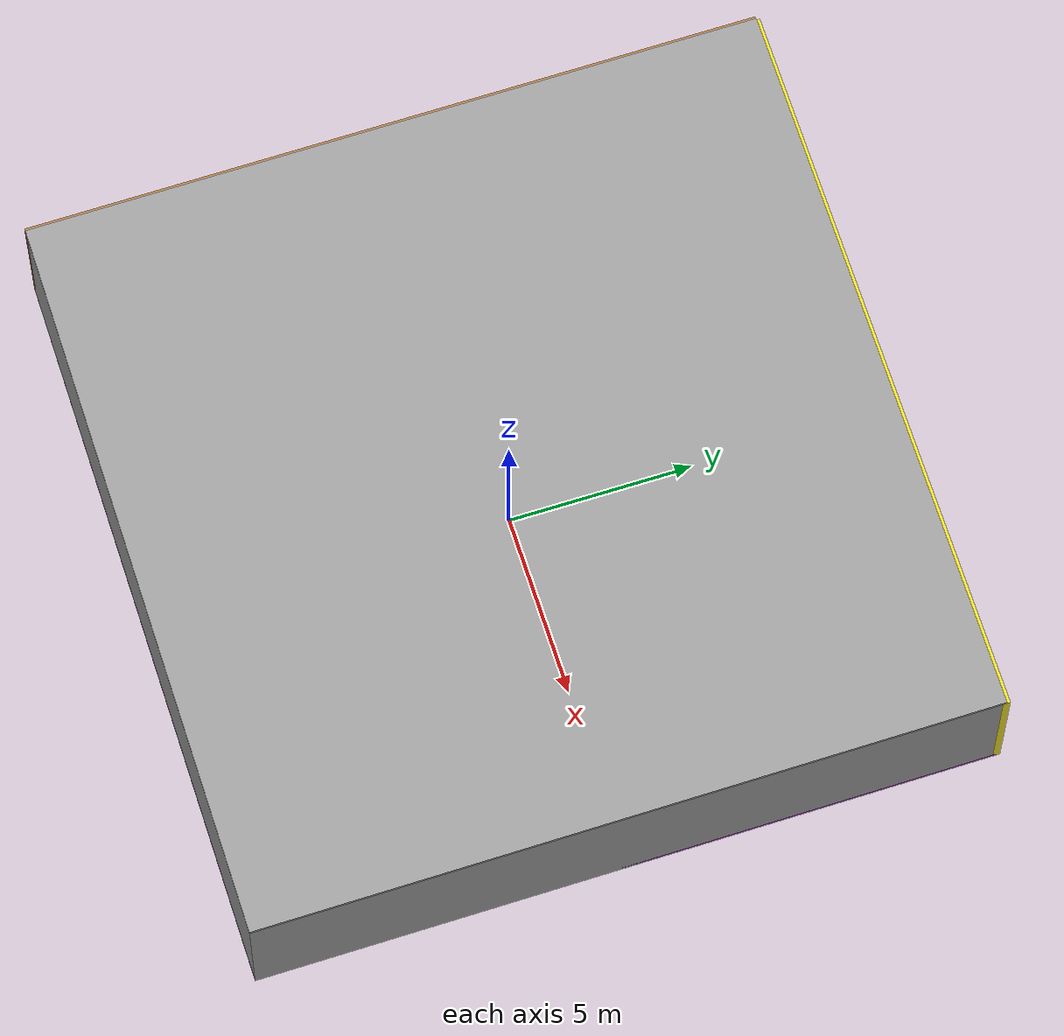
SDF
<sdf version="1.4">
 <world name="default">
  <physics type="ode">
   <max_step_size>0.001</max_step_size>
   <real_time_factor>1</real_time_factor>
   <real_time_update_rate>1000</real_time_update_rate>
   <gravity>0 0 -9.8</gravity>
  </physics>
  <scene><ambient>0.4 0.4 0.4 1</ambient><background>0.7 0.7 0.7 1</background><shadows>1</shadows></scene>
  <model name="Surrounding">
   <static>1</static>
   <link name="Ceiling">
    <collision name="Ceiling_Collision"><geometry><box><size>20 20 0.1</size></box></geometry></collision>
    <visual name="Ceiling_Visual">
     <geometry><box><size>20 20 0.1</size></box></geometry>
     <material>
      <script><uri>file://media/materials/scripts/gazebo.material</uri><name>Gazebo/Grey</name></script>
     </material>
    </visual>
    <pose>0 0 4.05 0 0 0</pose>
   </link>
   <link name="Wall_South">
    <collision name="Wall_South_Collision">
     <geometry><box><size>20 0 4</size></box></geometry>
     <pose>0 0 2 0 -0 0</pose>
    </collision>
    <visual name="Wall_South_Visual">
     <pose>0 0 2 0 -0 0</pose>
     <geometry><box><size>20 0 4</size></box></geometry>
     <material>
      <script><uri>file://media/materials/scripts/gazebo.material</uri><name>Gazebo/Pioneer2Body</name></script>
     </material>
    </visual>
    <velocity_decay><linear>0</linear><angular>0</angular></velocity_decay>
    <pose>0 -10 0 0 -0 0</pose>
   </link>
   <link name="Wall_East">
    <collision name="Wall_21_Collision">
     <geometry><box><size>20 0 4</size></box></geometry>
     <pose>0 0 2 0 -0 0</pose>
    </collision>
    <visual name="Wall_21_Visual">
     <pose>0 0 2 0 -0 0</pose>
     <geometry><box><size>20 0 4</size></box></geometry>
     <material>
      <script><uri>file://media/materials/scripts/gazebo.material</uri><name>Gazebo/Grey</name></script>
     </material>
    </visual>
    <velocity_decay><linear>0</linear><angular>0</angular></velocity_decay>
    <pose>10 0 0 0 -0 1.5708</pose>
   </link>
   <link name="Wall_North">
    <collision name="Wall_22_Collision">
     <geometry><box><size>20 0.2 4</size></box></geometry>
     <pose>0 0 2 0 -0 0</pose>
    </collision>
    <visual name="Wall_22_Visual">
     <pose>0 0 2 0 -0 0</pose>
     <geometry><box><size>20 0.2 4</size></box></geometry>
     <material>
      <script><uri>file://media/materials/scripts/gazebo.material</uri><name>Gazebo/YellowGlow</name></script>
     </material>
    </visual>
    <velocity_decay><linear>0</linear><angular>0</angular></velocity_decay>
    <pose>0 10 0 0 -0 0</pose>
   </link>
   <link name="Wall_West">
    <collision name="Wall_23_Collision">
     <geometry><box><size>20 0.2 4</size></box></geometry>
     <pose>0 0 2 0 -0 0</pose>
    </collision>
    <visual name="Wall_23_Visual">
     <pose>0 0 2 0 -0 0</pose>
     <geometry><box><size>20 0.2 4</size></box></geometry>
     <material>
      <script><uri>file://media/materials/scripts/gazebo.material</uri><name>Gazebo/WoodFloor</name></script>
     </material>
    </visual>
    <velocity_decay><linear>0</linear><angular>0</angular></velocity_decay>
    <pose>-10 0 0 0 0 -1.5708</pose>
   </link>
   <link name="Ground_link">
    <collision name="collision">
     <pose>0 0 .05 0 -0 0</pose>
     <geometry><box><size>20 20 0.1</size></box></geometry>
    </collision>
    <visual name="visual">
     <pose>0 0 .05 0 -0 0</pose>
     <geometry><box><size>20 20 0.1</size></box></geometry>
     <material>
      <script><uri>file://media/materials/scripts/gazebo.material</uri><name>Gazebo/PurpleGlow</name></script>
     </material>
    </visual>
   </link>
   <static>1</static>
  </model>
  <spherical_coordinates>
   <surface_model>EARTH_WGS84</surface_model>
   <latitude_deg>0</latitude_deg>
   <longitude_deg>0</longitude_deg>
   <elevation>0</elevation>
   <heading_deg>0</heading_deg>
  </spherical_coordinates>
  <light name="lightball_0" type="diffuse">
   <diffuse>0.8 0.8 0.8 1</diffuse>
   <specular>0.2 0.2 0.2 1</specular>
   <attenuation>
    <range>100</range>
    <constant>0.7</constant>
    <linear>0.01</linear>
    <quadratic>0.001</quadratic>
   </attenuation>
   <direction>-0.5 0.1 -0.9</direction>
   <pose>-1.33870951192 0.646965446696 1.36998345384 0 0 0</pose>
  </light>
  <light name="lightball_1" type="diffuse">
   <diffuse>0.8 0.8 0.8 1</diffuse>
   <specular>0.2 0.2 0.2 1</specular>
   <attenuation>
    <range>100</range>
    <constant>0.7</constant>
    <linear>0.01</linear>
    <quadratic>0.001</quadratic>
   </attenuation>
   <direction>-0.5 0.1 -0.9</direction>
   <pose>1.32032700601 2.79493806187 1.98210313009 0 0 0</pose>
  </light>
  <light name="lightball_2" type="diffuse">
   <diffuse>0.8 0.8 0.8 1</diffuse>
   <specular>0.2 0.2 0.2 1</specular>
   <attenuation>
    <range>100</range>
    <constant>0.7</constant>
    <linear>0.01</linear>
    <quadratic>0.001</quadratic>
   </attenuation>
   <direction>-0.5 0.1 -0.9</direction>
   <pose>3.49313474168 -8.62852631817 2.39666610121 0 0 0</pose>
  </light>
  <light name="lightball_3" type="diffuse">
   <diffuse>0.8 0.8 0.8 1</diffuse>
   <specular>0.2 0.2 0.2 1</specular>
   <attenuation>
    <range>100</range>
    <constant>0.7</constant>
    <linear>0.01</linear>
    <quadratic>0.001</quadratic>
   </attenuation>
   <direction>-0.5 0.1 -0.9</direction>
   <pose>-0.655973759187 -1.51014244843 1.63349213194 0 0 0</pose>
  </light>
  <light name="lightball_4" type="diffuse">
   <diffuse>0.8 0.8 0.8 1</diffuse>
   <specular>0.2 0.2 0.2 1</specular>
   <attenuation>
    <range>100</range>
    <constant>0.7</constant>
    <linear>0.01</linear>
    <quadratic>0.001</quadratic>
   </attenuation>
   <direction>-0.5 0.1 -0.9</direction>
   <pose>-8.36697190031 9.00648476253 1.07501876277 0 0 0</pose>
  </light>
  <light name="lightball_5" type="diffuse">
   <diffuse>0.8 0.8 0.8 1</diffuse>
   <specular>0.2 0.2 0.2 1</specular>
   <attenuation>
    <range>100</range>
    <constant>0.7</constant>
    <linear>0.01</linear>
    <quadratic>0.001</quadratic>
   </attenuation>
   <direction>-0.5 0.1 -0.9</direction>
   <pose>2.49150156884 8.32389657272 3.86306876236 0 0 0</pose>
  </light>
  <light name="lightball_6" type="diffuse">
   <diffuse>0.8 0.8 0.8 1</diffuse>
   <specular>0.2 0.2 0.2 1</specular>
   <attenuation>
    <range>100</range>
    <constant>0.7</constant>
    <linear>0.01</linear>
    <quadratic>0.001</quadratic>
   </attenuation>
   <direction>-0.5 0.1 -0.9</direction>
   <pose>4.94175781161 -0.769776190571 0.772893246851 0 0 0</pose>
  </light>
  <light name="lightball_7" type="diffuse">
   <diffuse>0.8 0.8 0.8 1</diffuse>
   <specular>0.2 0.2 0.2 1</specular>
   <attenuation>
    <range>100</range>
    <constant>0.7</constant>
    <linear>0.01</linear>
    <quadratic>0.001</quadratic>
   </attenuation>
   <direction>-0.5 0.1 -0.9</direction>
   <pose>-2.98301829438 8.96427488931 2.52241108515 0 0 0</pose>
  </light>
  <light name="lightball_8" type="diffuse">
   <diffuse>0.8 0.8 0.8 1</diffuse>
   <specular>0.2 0.2 0.2 1</specular>
   <attenuation>
    <range>100</range>
    <constant>0.7</constant>
    <linear>0.01</linear>
    <quadratic>0.001</quadratic>
   </attenuation>
   <direction>-0.5 0.1 -0.9</direction>
   <pose>-9.39101395178 9.64994090355 1.49414905831 0 0 0</pose>
  </light>
  <include><uri>model://cabinet</uri><pose>-5.04508823205 -4.74561156653 0 0 0 1.97038913495</pose></include>
  <include><uri>model://table</uri><pose>2.00586977562 -7.64333286494 0 0 0 2.39082465144</pose></include>
 </world>
</sdf>

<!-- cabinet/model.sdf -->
<sdf version="1.5">
  <model name="cabinet">
    <static>true</static>
    <link name="cabinet_bottom_plate">
      <inertial>
        <pose>0 0 -1 0 0 0</pose>
        <inertia>
          <ixx>2.050000</ixx>
          <ixy>0</ixy>
          <ixz>0</ixz>
          <iyy>2.050000</iyy>
          <iyz>0</iyz>
          <izz>2.050000</izz>
        </inertia>
        <mass>25.000000</mass>
      </inertial>
      <collision name="cabinet_bottom_plate_geom">
        <pose>0 0 0.010000 0 0 0</pose>
        <geometry>
          <box>
            <size>0.450000 0.450000 0.020000</size>
          </box>
        </geometry>
      </collision>
      <visual name="cabinet_bottom_plate_geom_visual">
        <pose>0 0 0.010000 0 0 0</pose>
        <geometry>
          <box>
            <size>0.450000 0.450000 0.020000</size>
          </box>
        </geometry>
        <material>
          <script>
            <uri>model://media/materials/scripts/gazebo.material</uri>
            <name>Gazebo/Wood</name>
          </script>
        </material>
      </visual>
      <collision name="cabinet_bottom_plate_geom_cabinet_back_plate">
        <pose>0.235000 0 0.510000 0 0 0</pose>
        <geometry>
          <box>
            <size>0.020000 0.450000 1.020000</size>
          </box>
        </geometry>
      </collision>
      <visual name="cabinet_bottom_plate_geom_cabinet_back_plate_visual">
        <pose>0.235000 0 0.510000 0 0 0</pose>
        <geometry>
          <box>
            <size>0.020000 0.450000 1.020000</size>
          </box>
        </geometry>
        <material>
          <script>
            <uri>model://media/materials/scripts/gazebo.material</uri>
            <name>Gazebo/Wood</name>
          </script>
        </material>
      </visual>
      <collision name="cabinet_bottom_plate_geom_cabinet_left_plate">
        <pose>0 0.235000 0.510000 0 0 0</pose>
        <geometry>
          <box>
            <size>0.450000 0.020000 1.020000</size>
          </box>
        </geometry>
      </collision>
      <visual name="cabinet_bottom_plate_geom_cabinet_left_plate_visual">
        <pose>0 0.235000 0.510000 0 0 0</pose>
        <geometry>
          <box>
            <size>0.450000 0.020000 1.020000</size>
          </box>
        </geometry>
        <material>
          <script>
            <uri>model://media/materials/scripts/gazebo.material</uri>
            <name>Gazebo/Wood</name>
          </script>
        </material>
      </visual>
      <collision name="cabinet_bottom_plate_geom_cabinet_middle_plate">
        <pose>0 0 0.510000 0 0 0</pose>
        <geometry>
          <box>
            <size>0.450000 0.450000 0.020000</size>
          </box>
        </geometry>
      </collision>
      <visual name="cabinet_bottom_plate_geom_cabinet_middle_plate_visual">
        <pose>0 0 0.510000 0 0 0</pose>
        <geometry>
          <box>
            <size>0.450000 0.450000 0.020000</size>
          </box>
        </geometry>
        <material>
          <script>
            <uri>model://media/materials/scripts/gazebo.material</uri>
            <name>Gazebo/Wood</name>
          </script>
        </material>
      </visual>
      <collision name="cabinet_bottom_plate_geom_cabinet_right_plate">
        <pose>0 -0.235000 0.510000 0 0 0</pose>
        <geometry>
          <box>
            <size>0.450000 0.020000 1.020000</size>
          </box>
        </geometry>
      </collision>
      <visual name="cabinet_bottom_plate_geom_cabinet_right_plate_visual">
        <pose>0 -0.235000 0.510000 0 0 0</pose>
        <geometry>
          <box>
            <size>0.450000 0.020000 1.020000</size>
          </box>
        </geometry>
        <material>
          <script>
            <uri>model://media/materials/scripts/gazebo.material</uri>
            <name>Gazebo/Wood</name>
          </script>
        </material>
      </visual>
      <collision name="cabinet_bottom_plate_geom_cabinet_top_plate">
        <pose>0 0 1.010000 0 0 0</pose>
        <geometry>
          <box>
            <size>0.450000 0.450000 0.020000</size>
          </box>
        </geometry>
      </collision>
      <visual name="cabinet_bottom_plate_geom_cabinet_top_plate_visual">
        <pose>0 0 1.010000 0 0 0</pose>
        <geometry>
          <box>
            <size>0.450000 0.450000 0.020000</size>
          </box>
        </geometry>
        <material>
          <script>
            <uri>model://media/materials/scripts/gazebo.material</uri>
            <name>Gazebo/Wood</name>
          </script>
        </material>
      </visual>
    </link>
  </model>
</sdf>

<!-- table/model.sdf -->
<sdf version="1.5">
  <model name="table">
    <static>true</static>
    <link name="link">
      <collision name="surface">
        <pose>0 0 1.0 0 0 0</pose>
        <geometry>
          <box>
            <size>1.5 0.8 0.03</size>
          </box>
        </geometry>
        <surface>
          <friction>
            <ode>
              <mu>0.6</mu>
              <mu2>0.6</mu2>
            </ode>
          </friction>
        </surface>
      </collision>
      <visual name="visual1">
        <pose>0 0 1.0 0 0 0</pose>
        <geometry>
          <box>
            <size>1.5 0.8 0.03</size>
          </box>
        </geometry>
        <material>
          <script>
            <uri>model://media/materials/scripts/gazebo.material</uri>
            <name>Gazebo/Wood</name>
          </script>
        </material>
      </visual>
      <collision name="front_left_leg">
        <pose>0.68 0.38 0.5 0 0 0</pose>
        <geometry>
          <cylinder>
            <radius>0.02</radius>
            <length>1.0</length>
          </cylinder>
        </geometry>
      </collision>
      <visual name="front_left_leg">
        <pose>0.68 0.38 0.5 0 0 0</pose>
        <geometry>
          <cylinder>
            <radius>0.02</radius>
            <length>1.0</length>
          </cylinder>
        </geometry>
        <material>
          <script>
            <uri>model://media/materials/scripts/gazebo.material</uri>
            <name>Gazebo/Grey</name>
          </script>
        </material>
      </visual>
      <collision name="front_right_leg">
        <pose>0.68 -0.38 0.5 0 0 0</pose>
        <geometry>
          <cylinder>
            <radius>0.02</radius>
            <length>1.0</length>
          </cylinder>
        </geometry>
      </collision>
      <visual name="front_right_leg">
        <pose>0.68 -0.38 0.5 0 0 0</pose>
        <geometry>
          <cylinder>
            <radius>0.02</radius>
            <length>1.0</length>
          </cylinder>
        </geometry>
        <material>
          <script>
            <uri>model://media/materials/scripts/gazebo.material</uri>
            <name>Gazebo/Grey</name>
          </script>
        </material>
      </visual>
      <collision name="back_right_leg">
        <pose>-0.68 -0.38 0.5 0 0 0</pose>
        <geometry>
          <cylinder>
            <radius>0.02</radius>
            <length>1.0</length>
          </cylinder>
        </geometry>
      </collision>
      <visual name="back_right_leg">
        <pose>-0.68 -0.38 0.5 0 0 0</pose>
        <geometry>
          <cylinder>
            <radius>0.02</radius>
            <length>1.0</length>
          </cylinder>
        </geometry>
        <material>
          <script>
            <uri>model://media/materials/scripts/gazebo.material</uri>
            <name>Gazebo/Grey</name>
          </script>
        </material>
      </visual>
      <collision name="back_left_leg">
        <pose>-0.68 0.38 0.5 0 0 0</pose>
        <geometry>
          <cylinder>
            <radius>0.02</radius>
            <length>1.0</length>
          </cylinder>
        </geometry>
      </collision>
      <visual name="back_left_leg">
        <pose>-0.68 0.38 0.5 0 0 0</pose>
        <geometry>
          <cylinder>
            <radius>0.02</radius>
            <length>1.0</length>
          </cylinder>
        </geometry>
        <material>
          <script>
            <uri>model://media/materials/scripts/gazebo.material</uri>
            <name>Gazebo/Grey</name>
          </script>
        </material>
      </visual>
    </link>
  </model>
</sdf>
